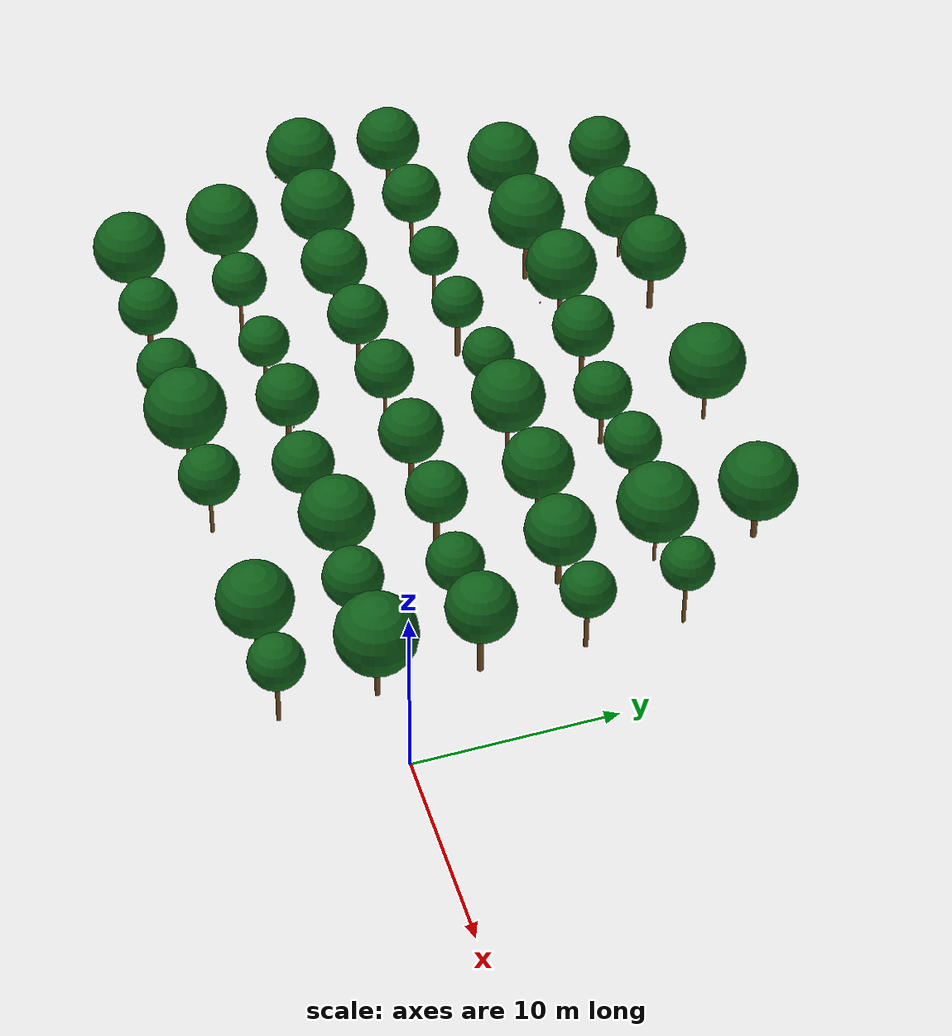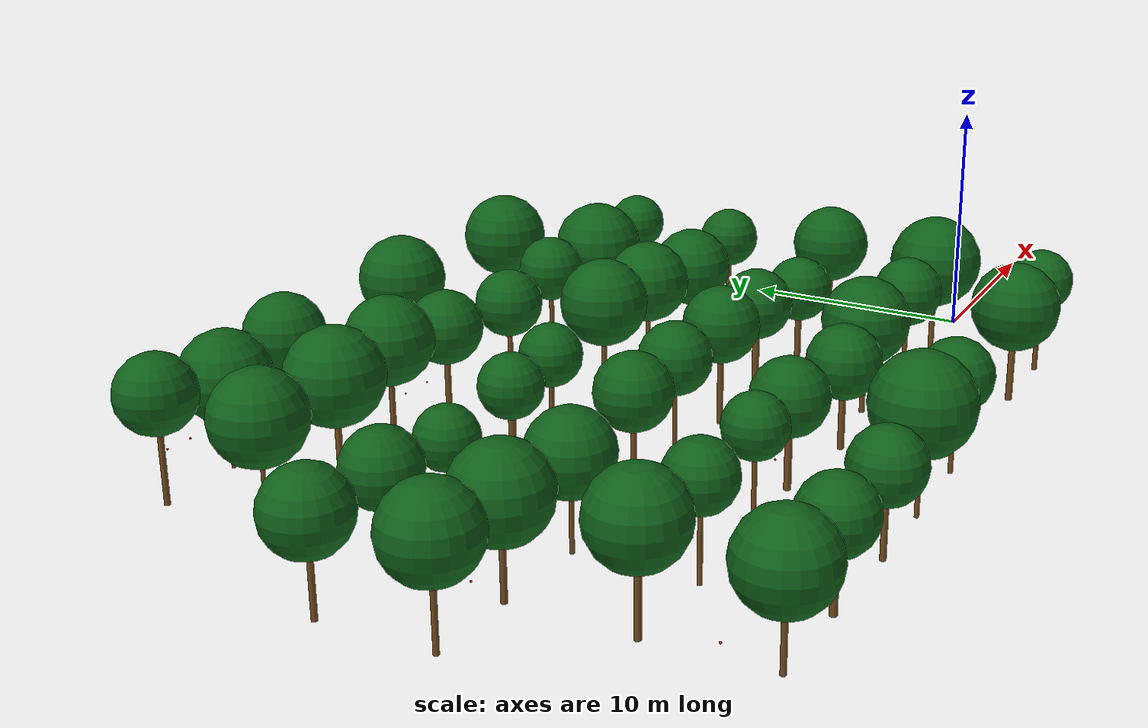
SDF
<sdf version="1.9">
 <world name="cheongsong_orchard">
  <model name="apple_tree_1191">
   <static>true</static>
   <pose>-32.25 -4.90 0 0 0 0</pose>
   <link name="link">
    <collision name="trunk_col">
     <pose>0 0 1.04 0 0 0</pose>
     <geometry><cylinder><radius>0.109</radius><length>2.08</length></cylinder></geometry>
    </collision>
    <visual name="trunk_vis">
     <pose>0 0 1.04 0 0 0</pose>
     <geometry><cylinder><radius>0.109</radius><length>2.08</length></cylinder></geometry>
     <material><ambient>0.35 0.22 0.08 1</ambient><diffuse>0.45 0.30 0.12 1</diffuse></material>
    </visual>
    <collision name="canopy_col">
     <pose>0 0 3.87 0 0 0</pose>
     <geometry><sphere><radius>1.79</radius></sphere></geometry>
    </collision>
    <visual name="canopy_vis">
     <pose>0 0 3.87 0 0 0</pose>
     <geometry><sphere><radius>1.79</radius></sphere></geometry>
     <material><ambient>0.04 0.28 0.06 1</ambient><diffuse>0.06 0.38 0.10 1</diffuse></material>
    </visual>
   </link>
  </model>
  <model name="apple_tree_1192">
   <static>true</static>
   <pose>-28.26 -4.95 0 0 0 0</pose>
   <link name="link">
    <collision name="trunk_col">
     <pose>0 0 1.08 0 0 0</pose>
     <geometry><cylinder><radius>0.141</radius><length>2.15</length></cylinder></geometry>
    </collision>
    <visual name="trunk_vis">
     <pose>0 0 1.08 0 0 0</pose>
     <geometry><cylinder><radius>0.141</radius><length>2.15</length></cylinder></geometry>
     <material><ambient>0.35 0.22 0.08 1</ambient><diffuse>0.45 0.30 0.12 1</diffuse></material>
    </visual>
    <collision name="canopy_col">
     <pose>0 0 3.60 0 0 0</pose>
     <geometry><sphere><radius>1.45</radius></sphere></geometry>
    </collision>
    <visual name="canopy_vis">
     <pose>0 0 3.60 0 0 0</pose>
     <geometry><sphere><radius>1.45</radius></sphere></geometry>
     <material><ambient>0.04 0.28 0.06 1</ambient><diffuse>0.06 0.38 0.10 1</diffuse></material>
    </visual>
   </link>
  </model>
  <model name="apple_tree_1193">
   <static>true</static>
   <pose>-24.00 -5.09 0 0 0 0</pose>
   <link name="link">
    <collision name="trunk_col">
     <pose>0 0 1.05 0 0 0</pose>
     <geometry><cylinder><radius>0.120</radius><length>2.10</length></cylinder></geometry>
    </collision>
    <visual name="trunk_vis">
     <pose>0 0 1.05 0 0 0</pose>
     <geometry><cylinder><radius>0.120</radius><length>2.10</length></cylinder></geometry>
     <material><ambient>0.35 0.22 0.08 1</ambient><diffuse>0.45 0.30 0.12 1</diffuse></material>
    </visual>
    <collision name="canopy_col">
     <pose>0 0 3.55 0 0 0</pose>
     <geometry><sphere><radius>1.45</radius></sphere></geometry>
    </collision>
    <visual name="canopy_vis">
     <pose>0 0 3.55 0 0 0</pose>
     <geometry><sphere><radius>1.45</radius></sphere></geometry>
     <material><ambient>0.04 0.28 0.06 1</ambient><diffuse>0.06 0.38 0.10 1</diffuse></material>
    </visual>
   </link>
  </model>
  <model name="apple_tree_1194">
   <static>true</static>
   <pose>-20.37 -5.06 0 0 0 0</pose>
   <link name="link">
    <collision name="trunk_col">
     <pose>0 0 1.20 0 0 0</pose>
     <geometry><cylinder><radius>0.094</radius><length>2.40</length></cylinder></geometry>
    </collision>
    <visual name="trunk_vis">
     <pose>0 0 1.20 0 0 0</pose>
     <geometry><cylinder><radius>0.094</radius><length>2.40</length></cylinder></geometry>
     <material><ambient>0.35 0.22 0.08 1</ambient><diffuse>0.45 0.30 0.12 1</diffuse></material>
    </visual>
    <collision name="canopy_col">
     <pose>0 0 4.39 0 0 0</pose>
     <geometry><sphere><radius>1.99</radius></sphere></geometry>
    </collision>
    <visual name="canopy_vis">
     <pose>0 0 4.39 0 0 0</pose>
     <geometry><sphere><radius>1.99</radius></sphere></geometry>
     <material><ambient>0.04 0.28 0.06 1</ambient><diffuse>0.06 0.38 0.10 1</diffuse></material>
    </visual>
   </link>
  </model>
  <model name="apple_tree_1195">
   <static>true</static>
   <pose>-16.22 -4.99 0 0 0 0</pose>
   <link name="link">
    <collision name="trunk_col">
     <pose>0 0 1.27 0 0 0</pose>
     <geometry><cylinder><radius>0.097</radius><length>2.54</length></cylinder></geometry>
    </collision>
    <visual name="trunk_vis">
     <pose>0 0 1.27 0 0 0</pose>
     <geometry><cylinder><radius>0.097</radius><length>2.54</length></cylinder></geometry>
     <material><ambient>0.35 0.22 0.08 1</ambient><diffuse>0.45 0.30 0.12 1</diffuse></material>
    </visual>
    <collision name="canopy_col">
     <pose>0 0 4.00 0 0 0</pose>
     <geometry><sphere><radius>1.46</radius></sphere></geometry>
    </collision>
    <visual name="canopy_vis">
     <pose>0 0 4.00 0 0 0</pose>
     <geometry><sphere><radius>1.46</radius></sphere></geometry>
     <material><ambient>0.04 0.28 0.06 1</ambient><diffuse>0.06 0.38 0.10 1</diffuse></material>
    </visual>
   </link>
  </model>
  <model name="apple_tree_1197">
   <static>true</static>
   <pose>-8.10 -4.94 0 0 0 0</pose>
   <link name="link">
    <collision name="trunk_col">
     <pose>0 0 1.14 0 0 0</pose>
     <geometry><cylinder><radius>0.139</radius><length>2.29</length></cylinder></geometry>
    </collision>
    <visual name="trunk_vis">
     <pose>0 0 1.14 0 0 0</pose>
     <geometry><cylinder><radius>0.139</radius><length>2.29</length></cylinder></geometry>
     <material><ambient>0.35 0.22 0.08 1</ambient><diffuse>0.45 0.30 0.12 1</diffuse></material>
    </visual>
    <collision name="canopy_col">
     <pose>0 0 4.12 0 0 0</pose>
     <geometry><sphere><radius>1.83</radius></sphere></geometry>
    </collision>
    <visual name="canopy_vis">
     <pose>0 0 4.12 0 0 0</pose>
     <geometry><sphere><radius>1.83</radius></sphere></geometry>
     <material><ambient>0.04 0.28 0.06 1</ambient><diffuse>0.06 0.38 0.10 1</diffuse></material>
    </visual>
   </link>
  </model>
  <model name="apple_tree_1198">
   <static>true</static>
   <pose>-4.25 -5.00 0 0 0 0</pose>
   <link name="link">
    <collision name="trunk_col">
     <pose>0 0 1.39 0 0 0</pose>
     <geometry><cylinder><radius>0.109</radius><length>2.78</length></cylinder></geometry>
    </collision>
    <visual name="trunk_vis">
     <pose>0 0 1.39 0 0 0</pose>
     <geometry><cylinder><radius>0.109</radius><length>2.78</length></cylinder></geometry>
     <material><ambient>0.35 0.22 0.08 1</ambient><diffuse>0.45 0.30 0.12 1</diffuse></material>
    </visual>
    <collision name="canopy_col">
     <pose>0 0 4.12 0 0 0</pose>
     <geometry><sphere><radius>1.34</radius></sphere></geometry>
    </collision>
    <visual name="canopy_vis">
     <pose>0 0 4.12 0 0 0</pose>
     <geometry><sphere><radius>1.34</radius></sphere></geometry>
     <material><ambient>0.04 0.28 0.06 1</ambient><diffuse>0.06 0.38 0.10 1</diffuse></material>
    </visual>
   </link>
  </model>
  <model name="apple_tree_1247">
   <static>true</static>
   <pose>-32.45 -0.07 0 0 0 0</pose>
   <link name="link">
    <collision name="trunk_col">
     <pose>0 0 1.23 0 0 0</pose>
     <geometry><cylinder><radius>0.126</radius><length>2.46</length></cylinder></geometry>
    </collision>
    <visual name="trunk_vis">
     <pose>0 0 1.23 0 0 0</pose>
     <geometry><cylinder><radius>0.126</radius><length>2.46</length></cylinder></geometry>
     <material><ambient>0.35 0.22 0.08 1</ambient><diffuse>0.45 0.30 0.12 1</diffuse></material>
    </visual>
    <collision name="canopy_col">
     <pose>0 0 4.25 0 0 0</pose>
     <geometry><sphere><radius>1.79</radius></sphere></geometry>
    </collision>
    <visual name="canopy_vis">
     <pose>0 0 4.25 0 0 0</pose>
     <geometry><sphere><radius>1.79</radius></sphere></geometry>
     <material><ambient>0.04 0.28 0.06 1</ambient><diffuse>0.06 0.38 0.10 1</diffuse></material>
    </visual>
   </link>
  </model>
  <model name="apple_tree_1248">
   <static>true</static>
   <pose>-28.39 -0.26 0 0 0 0</pose>
   <link name="link">
    <collision name="trunk_col">
     <pose>0 0 1.32 0 0 0</pose>
     <geometry><cylinder><radius>0.094</radius><length>2.64</length></cylinder></geometry>
    </collision>
    <visual name="trunk_vis">
     <pose>0 0 1.32 0 0 0</pose>
     <geometry><cylinder><radius>0.094</radius><length>2.64</length></cylinder></geometry>
     <material><ambient>0.35 0.22 0.08 1</ambient><diffuse>0.45 0.30 0.12 1</diffuse></material>
    </visual>
    <collision name="canopy_col">
     <pose>0 0 3.98 0 0 0</pose>
     <geometry><sphere><radius>1.35</radius></sphere></geometry>
    </collision>
    <visual name="canopy_vis">
     <pose>0 0 3.98 0 0 0</pose>
     <geometry><sphere><radius>1.35</radius></sphere></geometry>
     <material><ambient>0.04 0.28 0.06 1</ambient><diffuse>0.06 0.38 0.10 1</diffuse></material>
    </visual>
   </link>
  </model>
  <model name="apple_tree_1249">
   <static>true</static>
   <pose>-23.92 -0.22 0 0 0 0</pose>
   <link name="link">
    <collision name="trunk_col">
     <pose>0 0 1.37 0 0 0</pose>
     <geometry><cylinder><radius>0.093</radius><length>2.74</length></cylinder></geometry>
    </collision>
    <visual name="trunk_vis">
     <pose>0 0 1.37 0 0 0</pose>
     <geometry><cylinder><radius>0.093</radius><length>2.74</length></cylinder></geometry>
     <material><ambient>0.35 0.22 0.08 1</ambient><diffuse>0.45 0.30 0.12 1</diffuse></material>
    </visual>
    <collision name="canopy_col">
     <pose>0 0 3.99 0 0 0</pose>
     <geometry><sphere><radius>1.25</radius></sphere></geometry>
    </collision>
    <visual name="canopy_vis">
     <pose>0 0 3.99 0 0 0</pose>
     <geometry><sphere><radius>1.25</radius></sphere></geometry>
     <material><ambient>0.04 0.28 0.06 1</ambient><diffuse>0.06 0.38 0.10 1</diffuse></material>
    </visual>
   </link>
  </model>
  <model name="apple_tree_1250">
   <static>true</static>
   <pose>-20.38 -0.03 0 0 0 0</pose>
   <link name="link">
    <collision name="trunk_col">
     <pose>0 0 1.10 0 0 0</pose>
     <geometry><cylinder><radius>0.143</radius><length>2.20</length></cylinder></geometry>
    </collision>
    <visual name="trunk_vis">
     <pose>0 0 1.10 0 0 0</pose>
     <geometry><cylinder><radius>0.143</radius><length>2.20</length></cylinder></geometry>
     <material><ambient>0.35 0.22 0.08 1</ambient><diffuse>0.45 0.30 0.12 1</diffuse></material>
    </visual>
    <collision name="canopy_col">
     <pose>0 0 3.73 0 0 0</pose>
     <geometry><sphere><radius>1.53</radius></sphere></geometry>
    </collision>
    <visual name="canopy_vis">
     <pose>0 0 3.73 0 0 0</pose>
     <geometry><sphere><radius>1.53</radius></sphere></geometry>
     <material><ambient>0.04 0.28 0.06 1</ambient><diffuse>0.06 0.38 0.10 1</diffuse></material>
    </visual>
   </link>
  </model>
  <model name="apple_tree_1251">
   <static>true</static>
   <pose>-16.02 -0.46 0 0 0 0</pose>
   <link name="link">
    <collision name="trunk_col">
     <pose>0 0 1.08 0 0 0</pose>
     <geometry><cylinder><radius>0.135</radius><length>2.16</length></cylinder></geometry>
    </collision>
    <visual name="trunk_vis">
     <pose>0 0 1.08 0 0 0</pose>
     <geometry><cylinder><radius>0.135</radius><length>2.16</length></cylinder></geometry>
     <material><ambient>0.35 0.22 0.08 1</ambient><diffuse>0.45 0.30 0.12 1</diffuse></material>
    </visual>
    <collision name="canopy_col">
     <pose>0 0 3.66 0 0 0</pose>
     <geometry><sphere><radius>1.50</radius></sphere></geometry>
    </collision>
    <visual name="canopy_vis">
     <pose>0 0 3.66 0 0 0</pose>
     <geometry><sphere><radius>1.50</radius></sphere></geometry>
     <material><ambient>0.04 0.28 0.06 1</ambient><diffuse>0.06 0.38 0.10 1</diffuse></material>
    </visual>
   </link>
  </model>
  <model name="apple_tree_1252">
   <static>true</static>
   <pose>-12.18 0.09 0 0 0 0</pose>
   <link name="link">
    <collision name="trunk_col">
     <pose>0 0 1.10 0 0 0</pose>
     <geometry><cylinder><radius>0.114</radius><length>2.21</length></cylinder></geometry>
    </collision>
    <visual name="trunk_vis">
     <pose>0 0 1.10 0 0 0</pose>
     <geometry><cylinder><radius>0.114</radius><length>2.21</length></cylinder></geometry>
     <material><ambient>0.35 0.22 0.08 1</ambient><diffuse>0.45 0.30 0.12 1</diffuse></material>
    </visual>
    <collision name="canopy_col">
     <pose>0 0 4.01 0 0 0</pose>
     <geometry><sphere><radius>1.81</radius></sphere></geometry>
    </collision>
    <visual name="canopy_vis">
     <pose>0 0 4.01 0 0 0</pose>
     <geometry><sphere><radius>1.81</radius></sphere></geometry>
     <material><ambient>0.04 0.28 0.06 1</ambient><diffuse>0.06 0.38 0.10 1</diffuse></material>
    </visual>
   </link>
  </model>
  <model name="apple_tree_1253">
   <static>true</static>
   <pose>-8.13 -0.29 0 0 0 0</pose>
   <link name="link">
    <collision name="trunk_col">
     <pose>0 0 1.31 0 0 0</pose>
     <geometry><cylinder><radius>0.104</radius><length>2.61</length></cylinder></geometry>
    </collision>
    <visual name="trunk_vis">
     <pose>0 0 1.31 0 0 0</pose>
     <geometry><cylinder><radius>0.104</radius><length>2.61</length></cylinder></geometry>
     <material><ambient>0.35 0.22 0.08 1</ambient><diffuse>0.45 0.30 0.12 1</diffuse></material>
    </visual>
    <collision name="canopy_col">
     <pose>0 0 4.07 0 0 0</pose>
     <geometry><sphere><radius>1.45</radius></sphere></geometry>
    </collision>
    <visual name="canopy_vis">
     <pose>0 0 4.07 0 0 0</pose>
     <geometry><sphere><radius>1.45</radius></sphere></geometry>
     <material><ambient>0.04 0.28 0.06 1</ambient><diffuse>0.06 0.38 0.10 1</diffuse></material>
    </visual>
   </link>
  </model>
  <model name="apple_tree_1254">
   <static>true</static>
   <pose>-4.35 -0.27 0 0 0 0</pose>
   <link name="link">
    <collision name="trunk_col">
     <pose>0 0 1.17 0 0 0</pose>
     <geometry><cylinder><radius>0.123</radius><length>2.34</length></cylinder></geometry>
    </collision>
    <visual name="trunk_vis">
     <pose>0 0 1.17 0 0 0</pose>
     <geometry><cylinder><radius>0.123</radius><length>2.34</length></cylinder></geometry>
     <material><ambient>0.35 0.22 0.08 1</ambient><diffuse>0.45 0.30 0.12 1</diffuse></material>
    </visual>
    <collision name="canopy_col">
     <pose>0 0 4.32 0 0 0</pose>
     <geometry><sphere><radius>1.98</radius></sphere></geometry>
    </collision>
    <visual name="canopy_vis">
     <pose>0 0 4.32 0 0 0</pose>
     <geometry><sphere><radius>1.98</radius></sphere></geometry>
     <material><ambient>0.04 0.28 0.06 1</ambient><diffuse>0.06 0.38 0.10 1</diffuse></material>
    </visual>
   </link>
  </model>
  <model name="apple_tree_1290">
   <static>true</static>
   <pose>-36.06 5.03 0 0 0 0</pose>
   <link name="link">
    <collision name="trunk_col">
     <pose>0 0 1.24 0 0 0</pose>
     <geometry><cylinder><radius>0.108</radius><length>2.47</length></cylinder></geometry>
    </collision>
    <visual name="trunk_vis">
     <pose>0 0 1.24 0 0 0</pose>
     <geometry><cylinder><radius>0.108</radius><length>2.47</length></cylinder></geometry>
     <material><ambient>0.35 0.22 0.08 1</ambient><diffuse>0.45 0.30 0.12 1</diffuse></material>
    </visual>
    <collision name="canopy_col">
     <pose>0 0 4.23 0 0 0</pose>
     <geometry><sphere><radius>1.76</radius></sphere></geometry>
    </collision>
    <visual name="canopy_vis">
     <pose>0 0 4.23 0 0 0</pose>
     <geometry><sphere><radius>1.76</radius></sphere></geometry>
     <material><ambient>0.04 0.28 0.06 1</ambient><diffuse>0.06 0.38 0.10 1</diffuse></material>
    </visual>
   </link>
  </model>
  <model name="apple_tree_1291">
   <static>true</static>
   <pose>-32.38 4.87 0 0 0 0</pose>
   <link name="link">
    <collision name="trunk_col">
     <pose>0 0 1.06 0 0 0</pose>
     <geometry><cylinder><radius>0.119</radius><length>2.13</length></cylinder></geometry>
    </collision>
    <visual name="trunk_vis">
     <pose>0 0 1.06 0 0 0</pose>
     <geometry><cylinder><radius>0.119</radius><length>2.13</length></cylinder></geometry>
     <material><ambient>0.35 0.22 0.08 1</ambient><diffuse>0.45 0.30 0.12 1</diffuse></material>
    </visual>
    <collision name="canopy_col">
     <pose>0 0 3.97 0 0 0</pose>
     <geometry><sphere><radius>1.84</radius></sphere></geometry>
    </collision>
    <visual name="canopy_vis">
     <pose>0 0 3.97 0 0 0</pose>
     <geometry><sphere><radius>1.84</radius></sphere></geometry>
     <material><ambient>0.04 0.28 0.06 1</ambient><diffuse>0.06 0.38 0.10 1</diffuse></material>
    </visual>
   </link>
  </model>
  <model name="apple_tree_1292">
   <static>true</static>
   <pose>-28.42 4.59 0 0 0 0</pose>
   <link name="link">
    <collision name="trunk_col">
     <pose>0 0 1.08 0 0 0</pose>
     <geometry><cylinder><radius>0.091</radius><length>2.15</length></cylinder></geometry>
    </collision>
    <visual name="trunk_vis">
     <pose>0 0 1.08 0 0 0</pose>
     <geometry><cylinder><radius>0.091</radius><length>2.15</length></cylinder></geometry>
     <material><ambient>0.35 0.22 0.08 1</ambient><diffuse>0.45 0.30 0.12 1</diffuse></material>
    </visual>
    <collision name="canopy_col">
     <pose>0 0 3.80 0 0 0</pose>
     <geometry><sphere><radius>1.65</radius></sphere></geometry>
    </collision>
    <visual name="canopy_vis">
     <pose>0 0 3.80 0 0 0</pose>
     <geometry><sphere><radius>1.65</radius></sphere></geometry>
     <material><ambient>0.04 0.28 0.06 1</ambient><diffuse>0.06 0.38 0.10 1</diffuse></material>
    </visual>
   </link>
  </model>
  <model name="apple_tree_1293">
   <static>true</static>
   <pose>-23.98 4.53 0 0 0 0</pose>
   <link name="link">
    <collision name="trunk_col">
     <pose>0 0 1.45 0 0 0</pose>
     <geometry><cylinder><radius>0.115</radius><length>2.91</length></cylinder></geometry>
    </collision>
    <visual name="trunk_vis">
     <pose>0 0 1.45 0 0 0</pose>
     <geometry><cylinder><radius>0.115</radius><length>2.91</length></cylinder></geometry>
     <material><ambient>0.35 0.22 0.08 1</ambient><diffuse>0.45 0.30 0.12 1</diffuse></material>
    </visual>
    <collision name="canopy_col">
     <pose>0 0 4.40 0 0 0</pose>
     <geometry><sphere><radius>1.49</radius></sphere></geometry>
    </collision>
    <visual name="canopy_vis">
     <pose>0 0 4.40 0 0 0</pose>
     <geometry><sphere><radius>1.49</radius></sphere></geometry>
     <material><ambient>0.04 0.28 0.06 1</ambient><diffuse>0.06 0.38 0.10 1</diffuse></material>
    </visual>
   </link>
  </model>
  <model name="apple_tree_1294">
   <static>true</static>
   <pose>-20.16 4.76 0 0 0 0</pose>
   <link name="link">
    <collision name="trunk_col">
     <pose>0 0 1.44 0 0 0</pose>
     <geometry><cylinder><radius>0.080</radius><length>2.87</length></cylinder></geometry>
    </collision>
    <visual name="trunk_vis">
     <pose>0 0 1.44 0 0 0</pose>
     <geometry><cylinder><radius>0.080</radius><length>2.87</length></cylinder></geometry>
     <material><ambient>0.35 0.22 0.08 1</ambient><diffuse>0.45 0.30 0.12 1</diffuse></material>
    </visual>
    <collision name="canopy_col">
     <pose>0 0 4.31 0 0 0</pose>
     <geometry><sphere><radius>1.44</radius></sphere></geometry>
    </collision>
    <visual name="canopy_vis">
     <pose>0 0 4.31 0 0 0</pose>
     <geometry><sphere><radius>1.44</radius></sphere></geometry>
     <material><ambient>0.04 0.28 0.06 1</ambient><diffuse>0.06 0.38 0.10 1</diffuse></material>
    </visual>
   </link>
  </model>
  <model name="apple_tree_1295">
   <static>true</static>
   <pose>-15.92 4.82 0 0 0 0</pose>
   <link name="link">
    <collision name="trunk_col">
     <pose>0 0 1.36 0 0 0</pose>
     <geometry><cylinder><radius>0.126</radius><length>2.71</length></cylinder></geometry>
    </collision>
    <visual name="trunk_vis">
     <pose>0 0 1.36 0 0 0</pose>
     <geometry><cylinder><radius>0.126</radius><length>2.71</length></cylinder></geometry>
     <material><ambient>0.35 0.22 0.08 1</ambient><diffuse>0.45 0.30 0.12 1</diffuse></material>
    </visual>
    <collision name="canopy_col">
     <pose>0 0 4.27 0 0 0</pose>
     <geometry><sphere><radius>1.56</radius></sphere></geometry>
    </collision>
    <visual name="canopy_vis">
     <pose>0 0 4.27 0 0 0</pose>
     <geometry><sphere><radius>1.56</radius></sphere></geometry>
     <material><ambient>0.04 0.28 0.06 1</ambient><diffuse>0.06 0.38 0.10 1</diffuse></material>
    </visual>
   </link>
  </model>
  <model name="apple_tree_1296">
   <static>true</static>
   <pose>-12.14 4.93 0 0 0 0</pose>
   <link name="link">
    <collision name="trunk_col">
     <pose>0 0 1.23 0 0 0</pose>
     <geometry><cylinder><radius>0.149</radius><length>2.46</length></cylinder></geometry>
    </collision>
    <visual name="trunk_vis">
     <pose>0 0 1.23 0 0 0</pose>
     <geometry><cylinder><radius>0.149</radius><length>2.46</length></cylinder></geometry>
     <material><ambient>0.35 0.22 0.08 1</ambient><diffuse>0.45 0.30 0.12 1</diffuse></material>
    </visual>
    <collision name="canopy_col">
     <pose>0 0 3.94 0 0 0</pose>
     <geometry><sphere><radius>1.48</radius></sphere></geometry>
    </collision>
    <visual name="canopy_vis">
     <pose>0 0 3.94 0 0 0</pose>
     <geometry><sphere><radius>1.48</radius></sphere></geometry>
     <material><ambient>0.04 0.28 0.06 1</ambient><diffuse>0.06 0.38 0.10 1</diffuse></material>
    </visual>
   </link>
  </model>
  <model name="apple_tree_1297">
   <static>true</static>
   <pose>-8.17 4.64 0 0 0 0</pose>
   <link name="link">
    <collision name="trunk_col">
     <pose>0 0 1.02 0 0 0</pose>
     <geometry><cylinder><radius>0.137</radius><length>2.05</length></cylinder></geometry>
    </collision>
    <visual name="trunk_vis">
     <pose>0 0 1.02 0 0 0</pose>
     <geometry><cylinder><radius>0.137</radius><length>2.05</length></cylinder></geometry>
     <material><ambient>0.35 0.22 0.08 1</ambient><diffuse>0.45 0.30 0.12 1</diffuse></material>
    </visual>
    <collision name="canopy_col">
     <pose>0 0 3.44 0 0 0</pose>
     <geometry><sphere><radius>1.39</radius></sphere></geometry>
    </collision>
    <visual name="canopy_vis">
     <pose>0 0 3.44 0 0 0</pose>
     <geometry><sphere><radius>1.39</radius></sphere></geometry>
     <material><ambient>0.04 0.28 0.06 1</ambient><diffuse>0.06 0.38 0.10 1</diffuse></material>
    </visual>
   </link>
  </model>
  <model name="apple_tree_1298">
   <static>true</static>
   <pose>-4.38 4.69 0 0 0 0</pose>
   <link name="link">
    <collision name="trunk_col">
     <pose>0 0 1.38 0 0 0</pose>
     <geometry><cylinder><radius>0.147</radius><length>2.76</length></cylinder></geometry>
    </collision>
    <visual name="trunk_vis">
     <pose>0 0 1.38 0 0 0</pose>
     <geometry><cylinder><radius>0.147</radius><length>2.76</length></cylinder></geometry>
     <material><ambient>0.35 0.22 0.08 1</ambient><diffuse>0.45 0.30 0.12 1</diffuse></material>
    </visual>
    <collision name="canopy_col">
     <pose>0 0 4.44 0 0 0</pose>
     <geometry><sphere><radius>1.68</radius></sphere></geometry>
    </collision>
    <visual name="canopy_vis">
     <pose>0 0 4.44 0 0 0</pose>
     <geometry><sphere><radius>1.68</radius></sphere></geometry>
     <material><ambient>0.04 0.28 0.06 1</ambient><diffuse>0.06 0.38 0.10 1</diffuse></material>
    </visual>
   </link>
  </model>
  <model name="apple_tree_1334">
   <static>true</static>
   <pose>-36.11 9.65 0 0 0 0</pose>
   <link name="link">
    <collision name="trunk_col">
     <pose>0 0 1.14 0 0 0</pose>
     <geometry><cylinder><radius>0.114</radius><length>2.28</length></cylinder></geometry>
    </collision>
    <visual name="trunk_vis">
     <pose>0 0 1.14 0 0 0</pose>
     <geometry><cylinder><radius>0.114</radius><length>2.28</length></cylinder></geometry>
     <material><ambient>0.35 0.22 0.08 1</ambient><diffuse>0.45 0.30 0.12 1</diffuse></material>
    </visual>
    <collision name="canopy_col">
     <pose>0 0 3.89 0 0 0</pose>
     <geometry><sphere><radius>1.61</radius></sphere></geometry>
    </collision>
    <visual name="canopy_vis">
     <pose>0 0 3.89 0 0 0</pose>
     <geometry><sphere><radius>1.61</radius></sphere></geometry>
     <material><ambient>0.04 0.28 0.06 1</ambient><diffuse>0.06 0.38 0.10 1</diffuse></material>
    </visual>
   </link>
  </model>
  <model name="apple_tree_1335">
   <static>true</static>
   <pose>-32.10 9.69 0 0 0 0</pose>
   <link name="link">
    <collision name="trunk_col">
     <pose>0 0 1.11 0 0 0</pose>
     <geometry><cylinder><radius>0.100</radius><length>2.21</length></cylinder></geometry>
    </collision>
    <visual name="trunk_vis">
     <pose>0 0 1.11 0 0 0</pose>
     <geometry><cylinder><radius>0.100</radius><length>2.21</length></cylinder></geometry>
     <material><ambient>0.35 0.22 0.08 1</ambient><diffuse>0.45 0.30 0.12 1</diffuse></material>
    </visual>
    <collision name="canopy_col">
     <pose>0 0 3.69 0 0 0</pose>
     <geometry><sphere><radius>1.48</radius></sphere></geometry>
    </collision>
    <visual name="canopy_vis">
     <pose>0 0 3.69 0 0 0</pose>
     <geometry><sphere><radius>1.48</radius></sphere></geometry>
     <material><ambient>0.04 0.28 0.06 1</ambient><diffuse>0.06 0.38 0.10 1</diffuse></material>
    </visual>
   </link>
  </model>
  <model name="apple_tree_1336">
   <static>true</static>
   <pose>-28.24 9.70 0 0 0 0</pose>
   <link name="link">
    <collision name="trunk_col">
     <pose>0 0 1.00 0 0 0</pose>
     <geometry><cylinder><radius>0.083</radius><length>2.00</length></cylinder></geometry>
    </collision>
    <visual name="trunk_vis">
     <pose>0 0 1.00 0 0 0</pose>
     <geometry><cylinder><radius>0.083</radius><length>2.00</length></cylinder></geometry>
     <material><ambient>0.35 0.22 0.08 1</ambient><diffuse>0.45 0.30 0.12 1</diffuse></material>
    </visual>
    <collision name="canopy_col">
     <pose>0 0 3.24 0 0 0</pose>
     <geometry><sphere><radius>1.24</radius></sphere></geometry>
    </collision>
    <visual name="canopy_vis">
     <pose>0 0 3.24 0 0 0</pose>
     <geometry><sphere><radius>1.24</radius></sphere></geometry>
     <material><ambient>0.04 0.28 0.06 1</ambient><diffuse>0.06 0.38 0.10 1</diffuse></material>
    </visual>
   </link>
  </model>
  <model name="apple_tree_1337">
   <static>true</static>
   <pose>-24.04 9.64 0 0 0 0</pose>
   <link name="link">
    <collision name="trunk_col">
     <pose>0 0 1.21 0 0 0</pose>
     <geometry><cylinder><radius>0.144</radius><length>2.41</length></cylinder></geometry>
    </collision>
    <visual name="trunk_vis">
     <pose>0 0 1.21 0 0 0</pose>
     <geometry><cylinder><radius>0.144</radius><length>2.41</length></cylinder></geometry>
     <material><ambient>0.35 0.22 0.08 1</ambient><diffuse>0.45 0.30 0.12 1</diffuse></material>
    </visual>
    <collision name="canopy_col">
     <pose>0 0 3.69 0 0 0</pose>
     <geometry><sphere><radius>1.28</radius></sphere></geometry>
    </collision>
    <visual name="canopy_vis">
     <pose>0 0 3.69 0 0 0</pose>
     <geometry><sphere><radius>1.28</radius></sphere></geometry>
     <material><ambient>0.04 0.28 0.06 1</ambient><diffuse>0.06 0.38 0.10 1</diffuse></material>
    </visual>
   </link>
  </model>
  <model name="apple_tree_1338">
   <static>true</static>
   <pose>-20.38 10.08 0 0 0 0</pose>
   <link name="link">
    <collision name="trunk_col">
     <pose>0 0 1.15 0 0 0</pose>
     <geometry><cylinder><radius>0.101</radius><length>2.30</length></cylinder></geometry>
    </collision>
    <visual name="trunk_vis">
     <pose>0 0 1.15 0 0 0</pose>
     <geometry><cylinder><radius>0.101</radius><length>2.30</length></cylinder></geometry>
     <material><ambient>0.35 0.22 0.08 1</ambient><diffuse>0.45 0.30 0.12 1</diffuse></material>
    </visual>
    <collision name="canopy_col">
     <pose>0 0 3.58 0 0 0</pose>
     <geometry><sphere><radius>1.28</radius></sphere></geometry>
    </collision>
    <visual name="canopy_vis">
     <pose>0 0 3.58 0 0 0</pose>
     <geometry><sphere><radius>1.28</radius></sphere></geometry>
     <material><ambient>0.04 0.28 0.06 1</ambient><diffuse>0.06 0.38 0.10 1</diffuse></material>
    </visual>
   </link>
  </model>
  <model name="apple_tree_1339">
   <static>true</static>
   <pose>-16.48 9.84 0 0 0 0</pose>
   <link name="link">
    <collision name="trunk_col">
     <pose>0 0 1.40 0 0 0</pose>
     <geometry><cylinder><radius>0.103</radius><length>2.79</length></cylinder></geometry>
    </collision>
    <visual name="trunk_vis">
     <pose>0 0 1.40 0 0 0</pose>
     <geometry><cylinder><radius>0.103</radius><length>2.79</length></cylinder></geometry>
     <material><ambient>0.35 0.22 0.08 1</ambient><diffuse>0.45 0.30 0.12 1</diffuse></material>
    </visual>
    <collision name="canopy_col">
     <pose>0 0 4.58 0 0 0</pose>
     <geometry><sphere><radius>1.79</radius></sphere></geometry>
    </collision>
    <visual name="canopy_vis">
     <pose>0 0 4.58 0 0 0</pose>
     <geometry><sphere><radius>1.79</radius></sphere></geometry>
     <material><ambient>0.04 0.28 0.06 1</ambient><diffuse>0.06 0.38 0.10 1</diffuse></material>
    </visual>
   </link>
  </model>
  <model name="apple_tree_1340">
   <static>true</static>
   <pose>-12.27 9.98 0 0 0 0</pose>
   <link name="link">
    <collision name="trunk_col">
     <pose>0 0 1.23 0 0 0</pose>
     <geometry><cylinder><radius>0.106</radius><length>2.47</length></cylinder></geometry>
    </collision>
    <visual name="trunk_vis">
     <pose>0 0 1.23 0 0 0</pose>
     <geometry><cylinder><radius>0.106</radius><length>2.47</length></cylinder></geometry>
     <material><ambient>0.35 0.22 0.08 1</ambient><diffuse>0.45 0.30 0.12 1</diffuse></material>
    </visual>
    <collision name="canopy_col">
     <pose>0 0 4.19 0 0 0</pose>
     <geometry><sphere><radius>1.72</radius></sphere></geometry>
    </collision>
    <visual name="canopy_vis">
     <pose>0 0 4.19 0 0 0</pose>
     <geometry><sphere><radius>1.72</radius></sphere></geometry>
     <material><ambient>0.04 0.28 0.06 1</ambient><diffuse>0.06 0.38 0.10 1</diffuse></material>
    </visual>
   </link>
  </model>
  <model name="apple_tree_1341">
   <static>true</static>
   <pose>-8.37 9.78 0 0 0 0</pose>
   <link name="link">
    <collision name="trunk_col">
     <pose>0 0 1.02 0 0 0</pose>
     <geometry><cylinder><radius>0.146</radius><length>2.05</length></cylinder></geometry>
    </collision>
    <visual name="trunk_vis">
     <pose>0 0 1.02 0 0 0</pose>
     <geometry><cylinder><radius>0.146</radius><length>2.05</length></cylinder></geometry>
     <material><ambient>0.35 0.22 0.08 1</ambient><diffuse>0.45 0.30 0.12 1</diffuse></material>
    </visual>
    <collision name="canopy_col">
     <pose>0 0 3.74 0 0 0</pose>
     <geometry><sphere><radius>1.70</radius></sphere></geometry>
    </collision>
    <visual name="canopy_vis">
     <pose>0 0 3.74 0 0 0</pose>
     <geometry><sphere><radius>1.70</radius></sphere></geometry>
     <material><ambient>0.04 0.28 0.06 1</ambient><diffuse>0.06 0.38 0.10 1</diffuse></material>
    </visual>
   </link>
  </model>
  <model name="apple_tree_1342">
   <static>true</static>
   <pose>-4.31 9.80 0 0 0 0</pose>
   <link name="link">
    <collision name="trunk_col">
     <pose>0 0 1.35 0 0 0</pose>
     <geometry><cylinder><radius>0.117</radius><length>2.69</length></cylinder></geometry>
    </collision>
    <visual name="trunk_vis">
     <pose>0 0 1.35 0 0 0</pose>
     <geometry><cylinder><radius>0.117</radius><length>2.69</length></cylinder></geometry>
     <material><ambient>0.35 0.22 0.08 1</ambient><diffuse>0.45 0.30 0.12 1</diffuse></material>
    </visual>
    <collision name="canopy_col">
     <pose>0 0 4.01 0 0 0</pose>
     <geometry><sphere><radius>1.32</radius></sphere></geometry>
    </collision>
    <visual name="canopy_vis">
     <pose>0 0 4.01 0 0 0</pose>
     <geometry><sphere><radius>1.32</radius></sphere></geometry>
     <material><ambient>0.04 0.28 0.06 1</ambient><diffuse>0.06 0.38 0.10 1</diffuse></material>
    </visual>
   </link>
  </model>
  <model name="apple_tree_1388">
   <static>true</static>
   <pose>-32.32 14.60 0 0 0 0</pose>
   <link name="link">
    <collision name="trunk_col">
     <pose>0 0 1.40 0 0 0</pose>
     <geometry><cylinder><radius>0.082</radius><length>2.81</length></cylinder></geometry>
    </collision>
    <visual name="trunk_vis">
     <pose>0 0 1.40 0 0 0</pose>
     <geometry><cylinder><radius>0.082</radius><length>2.81</length></cylinder></geometry>
     <material><ambient>0.35 0.22 0.08 1</ambient><diffuse>0.45 0.30 0.12 1</diffuse></material>
    </visual>
    <collision name="canopy_col">
     <pose>0 0 4.61 0 0 0</pose>
     <geometry><sphere><radius>1.80</radius></sphere></geometry>
    </collision>
    <visual name="canopy_vis">
     <pose>0 0 4.61 0 0 0</pose>
     <geometry><sphere><radius>1.80</radius></sphere></geometry>
     <material><ambient>0.04 0.28 0.06 1</ambient><diffuse>0.06 0.38 0.10 1</diffuse></material>
    </visual>
   </link>
  </model>
  <model name="apple_tree_1389">
   <static>true</static>
   <pose>-28.19 14.52 0 0 0 0</pose>
   <link name="link">
    <collision name="trunk_col">
     <pose>0 0 1.38 0 0 0</pose>
     <geometry><cylinder><radius>0.128</radius><length>2.76</length></cylinder></geometry>
    </collision>
    <visual name="trunk_vis">
     <pose>0 0 1.38 0 0 0</pose>
     <geometry><cylinder><radius>0.128</radius><length>2.76</length></cylinder></geometry>
     <material><ambient>0.35 0.22 0.08 1</ambient><diffuse>0.45 0.30 0.12 1</diffuse></material>
    </visual>
    <collision name="canopy_col">
     <pose>0 0 4.66 0 0 0</pose>
     <geometry><sphere><radius>1.90</radius></sphere></geometry>
    </collision>
    <visual name="canopy_vis">
     <pose>0 0 4.66 0 0 0</pose>
     <geometry><sphere><radius>1.90</radius></sphere></geometry>
     <material><ambient>0.04 0.28 0.06 1</ambient><diffuse>0.06 0.38 0.10 1</diffuse></material>
    </visual>
   </link>
  </model>
  <model name="apple_tree_1390">
   <static>true</static>
   <pose>-24.16 15.01 0 0 0 0</pose>
   <link name="link">
    <collision name="trunk_col">
     <pose>0 0 1.42 0 0 0</pose>
     <geometry><cylinder><radius>0.115</radius><length>2.85</length></cylinder></geometry>
    </collision>
    <visual name="trunk_vis">
     <pose>0 0 1.42 0 0 0</pose>
     <geometry><cylinder><radius>0.115</radius><length>2.85</length></cylinder></geometry>
     <material><ambient>0.35 0.22 0.08 1</ambient><diffuse>0.45 0.30 0.12 1</diffuse></material>
    </visual>
    <collision name="canopy_col">
     <pose>0 0 4.61 0 0 0</pose>
     <geometry><sphere><radius>1.77</radius></sphere></geometry>
    </collision>
    <visual name="canopy_vis">
     <pose>0 0 4.61 0 0 0</pose>
     <geometry><sphere><radius>1.77</radius></sphere></geometry>
     <material><ambient>0.04 0.28 0.06 1</ambient><diffuse>0.06 0.38 0.10 1</diffuse></material>
    </visual>
   </link>
  </model>
  <model name="apple_tree_1391">
   <static>true</static>
   <pose>-20.44 14.93 0 0 0 0</pose>
   <link name="link">
    <collision name="trunk_col">
     <pose>0 0 1.21 0 0 0</pose>
     <geometry><cylinder><radius>0.126</radius><length>2.42</length></cylinder></geometry>
    </collision>
    <visual name="trunk_vis">
     <pose>0 0 1.21 0 0 0</pose>
     <geometry><cylinder><radius>0.126</radius><length>2.42</length></cylinder></geometry>
     <material><ambient>0.35 0.22 0.08 1</ambient><diffuse>0.45 0.30 0.12 1</diffuse></material>
    </visual>
    <collision name="canopy_col">
     <pose>0 0 3.94 0 0 0</pose>
     <geometry><sphere><radius>1.52</radius></sphere></geometry>
    </collision>
    <visual name="canopy_vis">
     <pose>0 0 3.94 0 0 0</pose>
     <geometry><sphere><radius>1.52</radius></sphere></geometry>
     <material><ambient>0.04 0.28 0.06 1</ambient><diffuse>0.06 0.38 0.10 1</diffuse></material>
    </visual>
   </link>
  </model>
  <model name="apple_tree_1392">
   <static>true</static>
   <pose>-16.26 14.54 0 0 0 0</pose>
   <link name="link">
    <collision name="trunk_col">
     <pose>0 0 1.16 0 0 0</pose>
     <geometry><cylinder><radius>0.110</radius><length>2.31</length></cylinder></geometry>
    </collision>
    <visual name="trunk_vis">
     <pose>0 0 1.16 0 0 0</pose>
     <geometry><cylinder><radius>0.110</radius><length>2.31</length></cylinder></geometry>
     <material><ambient>0.35 0.22 0.08 1</ambient><diffuse>0.45 0.30 0.12 1</diffuse></material>
    </visual>
    <collision name="canopy_col">
     <pose>0 0 3.73 0 0 0</pose>
     <geometry><sphere><radius>1.42</radius></sphere></geometry>
    </collision>
    <visual name="canopy_vis">
     <pose>0 0 3.73 0 0 0</pose>
     <geometry><sphere><radius>1.42</radius></sphere></geometry>
     <material><ambient>0.04 0.28 0.06 1</ambient><diffuse>0.06 0.38 0.10 1</diffuse></material>
    </visual>
   </link>
  </model>
  <model name="apple_tree_1393">
   <static>true</static>
   <pose>-12.43 14.73 0 0 0 0</pose>
   <link name="link">
    <collision name="trunk_col">
     <pose>0 0 1.35 0 0 0</pose>
     <geometry><cylinder><radius>0.103</radius><length>2.71</length></cylinder></geometry>
    </collision>
    <visual name="trunk_vis">
     <pose>0 0 1.35 0 0 0</pose>
     <geometry><cylinder><radius>0.103</radius><length>2.71</length></cylinder></geometry>
     <material><ambient>0.35 0.22 0.08 1</ambient><diffuse>0.45 0.30 0.12 1</diffuse></material>
    </visual>
    <collision name="canopy_col">
     <pose>0 0 4.10 0 0 0</pose>
     <geometry><sphere><radius>1.39</radius></sphere></geometry>
    </collision>
    <visual name="canopy_vis">
     <pose>0 0 4.10 0 0 0</pose>
     <geometry><sphere><radius>1.39</radius></sphere></geometry>
     <material><ambient>0.04 0.28 0.06 1</ambient><diffuse>0.06 0.38 0.10 1</diffuse></material>
    </visual>
   </link>
  </model>
  <model name="apple_tree_1394">
   <static>true</static>
   <pose>-8.39 14.57 0 0 0 0</pose>
   <link name="link">
    <collision name="trunk_col">
     <pose>0 0 1.08 0 0 0</pose>
     <geometry><cylinder><radius>0.081</radius><length>2.16</length></cylinder></geometry>
    </collision>
    <visual name="trunk_vis">
     <pose>0 0 1.08 0 0 0</pose>
     <geometry><cylinder><radius>0.081</radius><length>2.16</length></cylinder></geometry>
     <material><ambient>0.35 0.22 0.08 1</ambient><diffuse>0.45 0.30 0.12 1</diffuse></material>
    </visual>
    <collision name="canopy_col">
     <pose>0 0 4.08 0 0 0</pose>
     <geometry><sphere><radius>1.93</radius></sphere></geometry>
    </collision>
    <visual name="canopy_vis">
     <pose>0 0 4.08 0 0 0</pose>
     <geometry><sphere><radius>1.93</radius></sphere></geometry>
     <material><ambient>0.04 0.28 0.06 1</ambient><diffuse>0.06 0.38 0.10 1</diffuse></material>
    </visual>
   </link>
  </model>
  <model name="apple_tree_1395">
   <static>true</static>
   <pose>-4.38 14.63 0 0 0 0</pose>
   <link name="link">
    <collision name="trunk_col">
     <pose>0 0 1.43 0 0 0</pose>
     <geometry><cylinder><radius>0.097</radius><length>2.86</length></cylinder></geometry>
    </collision>
    <visual name="trunk_vis">
     <pose>0 0 1.43 0 0 0</pose>
     <geometry><cylinder><radius>0.097</radius><length>2.86</length></cylinder></geometry>
     <material><ambient>0.35 0.22 0.08 1</ambient><diffuse>0.45 0.30 0.12 1</diffuse></material>
    </visual>
    <collision name="canopy_col">
     <pose>0 0 4.12 0 0 0</pose>
     <geometry><sphere><radius>1.27</radius></sphere></geometry>
    </collision>
    <visual name="canopy_vis">
     <pose>0 0 4.12 0 0 0</pose>
     <geometry><sphere><radius>1.27</radius></sphere></geometry>
     <material><ambient>0.04 0.28 0.06 1</ambient><diffuse>0.06 0.38 0.10 1</diffuse></material>
    </visual>
   </link>
  </model>
  <model name="apple_tree_1440">
   <static>true</static>
   <pose>-31.90 19.61 0 0 0 0</pose>
   <link name="link">
    <collision name="trunk_col">
     <pose>0 0 1.42 0 0 0</pose>
     <geometry><cylinder><radius>0.116</radius><length>2.83</length></cylinder></geometry>
    </collision>
    <visual name="trunk_vis">
     <pose>0 0 1.42 0 0 0</pose>
     <geometry><cylinder><radius>0.116</radius><length>2.83</length></cylinder></geometry>
     <material><ambient>0.35 0.22 0.08 1</ambient><diffuse>0.45 0.30 0.12 1</diffuse></material>
    </visual>
    <collision name="canopy_col">
     <pose>0 0 4.38 0 0 0</pose>
     <geometry><sphere><radius>1.55</radius></sphere></geometry>
    </collision>
    <visual name="canopy_vis">
     <pose>0 0 4.38 0 0 0</pose>
     <geometry><sphere><radius>1.55</radius></sphere></geometry>
     <material><ambient>0.04 0.28 0.06 1</ambient><diffuse>0.06 0.38 0.10 1</diffuse></material>
    </visual>
   </link>
  </model>
  <model name="apple_tree_1441">
   <static>true</static>
   <pose>-28.30 19.57 0 0 0 0</pose>
   <link name="link">
    <collision name="trunk_col">
     <pose>0 0 0.99 0 0 0</pose>
     <geometry><cylinder><radius>0.081</radius><length>1.97</length></cylinder></geometry>
    </collision>
    <visual name="trunk_vis">
     <pose>0 0 0.99 0 0 0</pose>
     <geometry><cylinder><radius>0.081</radius><length>1.97</length></cylinder></geometry>
     <material><ambient>0.35 0.22 0.08 1</ambient><diffuse>0.45 0.30 0.12 1</diffuse></material>
    </visual>
    <collision name="canopy_col">
     <pose>0 0 3.79 0 0 0</pose>
     <geometry><sphere><radius>1.82</radius></sphere></geometry>
    </collision>
    <visual name="canopy_vis">
     <pose>0 0 3.79 0 0 0</pose>
     <geometry><sphere><radius>1.82</radius></sphere></geometry>
     <material><ambient>0.04 0.28 0.06 1</ambient><diffuse>0.06 0.38 0.10 1</diffuse></material>
    </visual>
   </link>
  </model>
  <model name="apple_tree_1442">
   <static>true</static>
   <pose>-24.40 19.88 0 0 0 0</pose>
   <link name="link">
    <collision name="trunk_col">
     <pose>0 0 1.24 0 0 0</pose>
     <geometry><cylinder><radius>0.148</radius><length>2.48</length></cylinder></geometry>
    </collision>
    <visual name="trunk_vis">
     <pose>0 0 1.24 0 0 0</pose>
     <geometry><cylinder><radius>0.148</radius><length>2.48</length></cylinder></geometry>
     <material><ambient>0.35 0.22 0.08 1</ambient><diffuse>0.45 0.30 0.12 1</diffuse></material>
    </visual>
    <collision name="canopy_col">
     <pose>0 0 4.14 0 0 0</pose>
     <geometry><sphere><radius>1.66</radius></sphere></geometry>
    </collision>
    <visual name="canopy_vis">
     <pose>0 0 4.14 0 0 0</pose>
     <geometry><sphere><radius>1.66</radius></sphere></geometry>
     <material><ambient>0.04 0.28 0.06 1</ambient><diffuse>0.06 0.38 0.10 1</diffuse></material>
    </visual>
   </link>
  </model>
  <model name="apple_tree_1444">
   <static>true</static>
   <pose>-16.38 19.90 0 0 0 0</pose>
   <link name="link">
    <collision name="trunk_col">
     <pose>0 0 1.08 0 0 0</pose>
     <geometry><cylinder><radius>0.094</radius><length>2.17</length></cylinder></geometry>
    </collision>
    <visual name="trunk_vis">
     <pose>0 0 1.08 0 0 0</pose>
     <geometry><cylinder><radius>0.094</radius><length>2.17</length></cylinder></geometry>
     <material><ambient>0.35 0.22 0.08 1</ambient><diffuse>0.45 0.30 0.12 1</diffuse></material>
    </visual>
    <collision name="canopy_col">
     <pose>0 0 4.04 0 0 0</pose>
     <geometry><sphere><radius>1.87</radius></sphere></geometry>
    </collision>
    <visual name="canopy_vis">
     <pose>0 0 4.04 0 0 0</pose>
     <geometry><sphere><radius>1.87</radius></sphere></geometry>
     <material><ambient>0.04 0.28 0.06 1</ambient><diffuse>0.06 0.38 0.10 1</diffuse></material>
    </visual>
   </link>
  </model>
  <model name="apple_tree_1446">
   <static>true</static>
   <pose>-8.44 19.60 0 0 0 0</pose>
   <link name="link">
    <collision name="trunk_col">
     <pose>0 0 0.99 0 0 0</pose>
     <geometry><cylinder><radius>0.149</radius><length>1.97</length></cylinder></geometry>
    </collision>
    <visual name="trunk_vis">
     <pose>0 0 0.99 0 0 0</pose>
     <geometry><cylinder><radius>0.149</radius><length>1.97</length></cylinder></geometry>
     <material><ambient>0.35 0.22 0.08 1</ambient><diffuse>0.45 0.30 0.12 1</diffuse></material>
    </visual>
    <collision name="canopy_col">
     <pose>0 0 3.87 0 0 0</pose>
     <geometry><sphere><radius>1.89</radius></sphere></geometry>
    </collision>
    <visual name="canopy_vis">
     <pose>0 0 3.87 0 0 0</pose>
     <geometry><sphere><radius>1.89</radius></sphere></geometry>
     <material><ambient>0.04 0.28 0.06 1</ambient><diffuse>0.06 0.38 0.10 1</diffuse></material>
    </visual>
   </link>
  </model>
  <model name="apple_1190_0">
   <static>true</static>
   <pose>-35.75 -4.41 2.85 0 0 0</pose>
   <link name="link">
    <visual name="visual">
     <geometry><sphere><radius>0.04</radius></sphere></geometry>
     <material><ambient>0.7 0.05 0.02 1</ambient><diffuse>0.9 0.10 0.05 1</diffuse></material>
    </visual>
   </link>
  </model>
  <model name="apple_1250_0">
   <static>true</static>
   <pose>-20.04 -0.24 2.27 0 0 0</pose>
   <link name="link">
    <visual name="visual">
     <geometry><sphere><radius>0.04</radius></sphere></geometry>
     <material><ambient>0.7 0.05 0.02 1</ambient><diffuse>0.9 0.10 0.05 1</diffuse></material>
    </visual>
   </link>
  </model>
  <model name="apple_1250_1">
   <static>true</static>
   <pose>-20.05 0.15 1.73 0 0 0</pose>
   <link name="link">
    <visual name="visual">
     <geometry><sphere><radius>0.04</radius></sphere></geometry>
     <material><ambient>0.7 0.05 0.02 1</ambient><diffuse>0.9 0.10 0.05 1</diffuse></material>
    </visual>
   </link>
  </model>
  <model name="apple_1250_2">
   <static>true</static>
   <pose>-20.08 0.09 1.84 0 0 0</pose>
   <link name="link">
    <visual name="visual">
     <geometry><sphere><radius>0.04</radius></sphere></geometry>
     <material><ambient>0.7 0.05 0.02 1</ambient><diffuse>0.9 0.10 0.05 1</diffuse></material>
    </visual>
   </link>
  </model>
  <model name="apple_1250_3">
   <static>true</static>
   <pose>-21.38 0.06 1.60 0 0 0</pose>
   <link name="link">
    <visual name="visual">
     <geometry><sphere><radius>0.04</radius></sphere></geometry>
     <material><ambient>0.7 0.05 0.02 1</ambient><diffuse>0.9 0.10 0.05 1</diffuse></material>
    </visual>
   </link>
  </model>
  <model name="apple_1250_4">
   <static>true</static>
   <pose>-20.50 1.14 2.30 0 0 0</pose>
   <link name="link">
    <visual name="visual">
     <geometry><sphere><radius>0.04</radius></sphere></geometry>
     <material><ambient>0.7 0.05 0.02 1</ambient><diffuse>0.9 0.10 0.05 1</diffuse></material>
    </visual>
   </link>
  </model>
  <model name="apple_1290_3">
   <static>true</static>
   <pose>-36.04 3.66 2.88 0 0 0</pose>
   <link name="link">
    <visual name="visual">
     <geometry><sphere><radius>0.04</radius></sphere></geometry>
     <material><ambient>0.7 0.05 0.02 1</ambient><diffuse>0.9 0.10 0.05 1</diffuse></material>
    </visual>
   </link>
  </model>
  <model name="apple_1340_0">
   <static>true</static>
   <pose>-12.61 9.78 1.91 0 0 0</pose>
   <link name="link">
    <visual name="visual">
     <geometry><sphere><radius>0.04</radius></sphere></geometry>
     <material><ambient>0.7 0.05 0.02 1</ambient><diffuse>0.9 0.10 0.05 1</diffuse></material>
    </visual>
   </link>
  </model>
  <model name="apple_1340_1">
   <static>true</static>
   <pose>-12.92 9.29 1.83 0 0 0</pose>
   <link name="link">
    <visual name="visual">
     <geometry><sphere><radius>0.04</radius></sphere></geometry>
     <material><ambient>0.7 0.05 0.02 1</ambient><diffuse>0.9 0.10 0.05 1</diffuse></material>
    </visual>
   </link>
  </model>
  <model name="apple_1340_2">
   <static>true</static>
   <pose>-11.05 9.73 2.76 0 0 0</pose>
   <link name="link">
    <visual name="visual">
     <geometry><sphere><radius>0.04</radius></sphere></geometry>
     <material><ambient>0.7 0.05 0.02 1</ambient><diffuse>0.9 0.10 0.05 1</diffuse></material>
    </visual>
   </link>
  </model>
  <model name="apple_1390_0">
   <static>true</static>
   <pose>-23.61 14.76 2.25 0 0 0</pose>
   <link name="link">
    <visual name="visual">
     <geometry><sphere><radius>0.04</radius></sphere></geometry>
     <material><ambient>0.7 0.05 0.02 1</ambient><diffuse>0.9 0.10 0.05 1</diffuse></material>
    </visual>
   </link>
  </model>
  <model name="apple_1390_1">
   <static>true</static>
   <pose>-25.13 15.95 3.06 0 0 0</pose>
   <link name="link">
    <visual name="visual">
     <geometry><sphere><radius>0.04</radius></sphere></geometry>
     <material><ambient>0.7 0.05 0.02 1</ambient><diffuse>0.9 0.10 0.05 1</diffuse></material>
    </visual>
   </link>
  </model>
  <model name="apple_1390_2">
   <static>true</static>
   <pose>-24.45 15.22 2.62 0 0 0</pose>
   <link name="link">
    <visual name="visual">
     <geometry><sphere><radius>0.04</radius></sphere></geometry>
     <material><ambient>0.7 0.05 0.02 1</ambient><diffuse>0.9 0.10 0.05 1</diffuse></material>
    </visual>
   </link>
  </model>
  <model name="apple_1390_3">
   <static>true</static>
   <pose>-23.55 13.76 2.89 0 0 0</pose>
   <link name="link">
    <visual name="visual">
     <geometry><sphere><radius>0.04</radius></sphere></geometry>
     <material><ambient>0.7 0.05 0.02 1</ambient><diffuse>0.9 0.10 0.05 1</diffuse></material>
    </visual>
   </link>
  </model>
  <model name="apple_1440_0">
   <static>true</static>
   <pose>-32.01 19.21 2.34 0 0 0</pose>
   <link name="link">
    <visual name="visual">
     <geometry><sphere><radius>0.04</radius></sphere></geometry>
     <material><ambient>0.7 0.05 0.02 1</ambient><diffuse>0.9 0.10 0.05 1</diffuse></material>
    </visual>
   </link>
  </model>
  <model name="apple_1440_1">
   <static>true</static>
   <pose>-32.49 19.30 3.04 0 0 0</pose>
   <link name="link">
    <visual name="visual">
     <geometry><sphere><radius>0.04</radius></sphere></geometry>
     <material><ambient>0.7 0.05 0.02 1</ambient><diffuse>0.9 0.10 0.05 1</diffuse></material>
    </visual>
   </link>
  </model>
  <model name="apple_1440_2">
   <static>true</static>
   <pose>-30.96 19.07 2.38 0 0 0</pose>
   <link name="link">
    <visual name="visual">
     <geometry><sphere><radius>0.04</radius></sphere></geometry>
     <material><ambient>0.7 0.05 0.02 1</ambient><diffuse>0.9 0.10 0.05 1</diffuse></material>
    </visual>
   </link>
  </model>
 </world>
</sdf>
